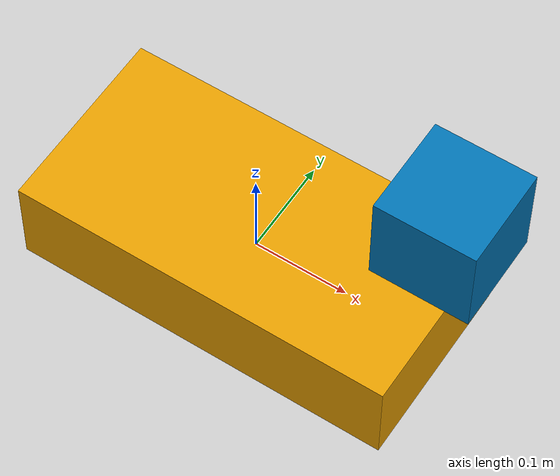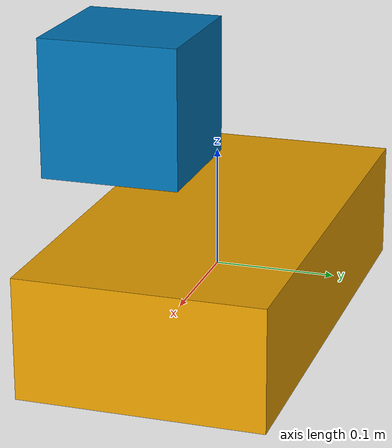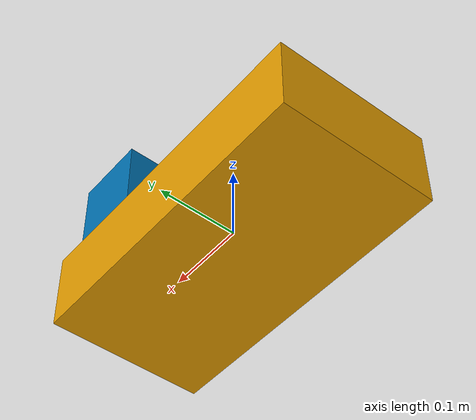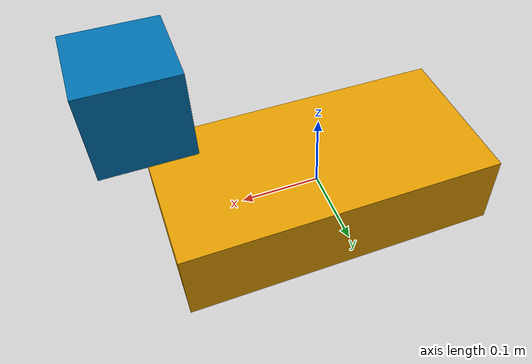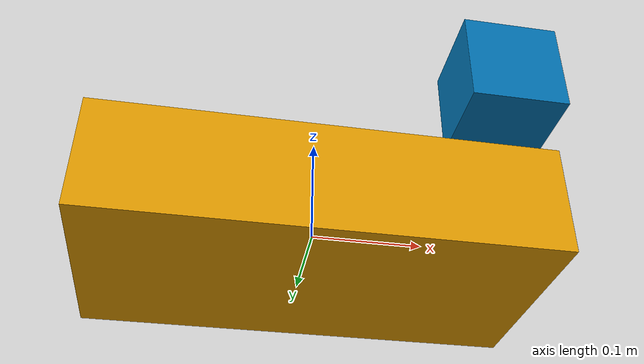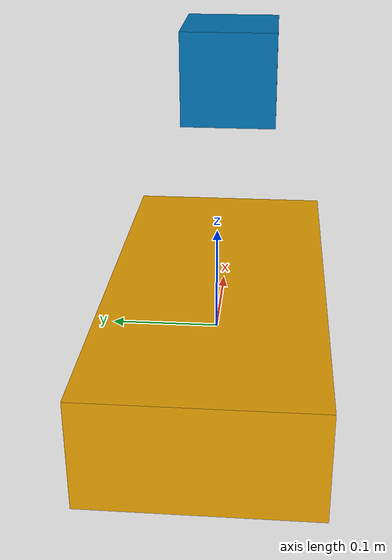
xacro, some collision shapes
<?xml version='1.0'?>
<robot xmlns:xacro="http://www.ros.org/wiki/xacro" name = "my_robot">
 <!--xacro:include filename="$(find my_robot)/src/urdf/hokuyo_utm30lx.urdf.xacro"/-->

        <link name="chassis">
            <pose xyz="0 0 0.1" rpy="0 0 0"/>
            <inertial>
             <mass value="15.0"/>
             <origin xyz="0.0 0 0.1" rpy=" 0 0 0"/>
              <inertia
               ixx="0.1" ixy="0" ixz="0"
               iyy="0.1" iyz="0"
               izz="0.1"
              />
            </inertial>

            <visual name='visual'>
              <geometry>
                <box size= "0.4 0.2 0.1"/>
              </geometry>
            </visual>

           <collision name='collision'>
              <geometry>
                <box size= "0.4 0.2 0.1"/>
              </geometry>
            </collision>
        </link>

        <link name = "caster_wheel">
            <visual name='caster_visual'>
             <pose xyz="-0.15 0 -0.05" rpy="0 0 0"/>
              <geometry>
               <sphere radius="0.05"/>
              </geometry>
            </visual>

            <collision name='caster_collision'>
             <origin xyz="-0.15 0 -0.05" rpy=" 0 0 0"/>
              <geometry>
               <sphere radius="0.05"/>
              </geometry>
              <surface>
               <friction>
                <ode>
                 <mu>0</mu>
                 <mu2>0</mu2>
                 <slip1>1.0</slip1>
                 <slip2>1.0</slip2>
                </ode>
               </friction>
              </surface>
            </collision>
        </link>

        <link name="left_wheel">
         <pose xyz="0.1 0.13 0.1" rpy="0 1.5707 1.5707"/>

         <inertial>
          <origin xyz="0 0 0" rpy="0 1.5707 1.5707"/>
          <mass value="5"/>
          <inertia
           ixx=".1" ixy="0.0" ixz="0.0"
           iyy=".1" iyz="0.0"
           izz=".1"/>
          </inertial>

          <visual name='visual'>
           <geometry>
            <cylinder radius="0.1" length="0.05"/>
           </geometry>
          </visual>

          <collision name='collision'>
           <geometry>
            <cylinder radius="0.1" length="0.05"/>
           </geometry>
          </collision>
        </link>

        <link name="right_wheel">
         <pose xyz="0.1 -0.13 0.1" rpy="0 1.5707 1.5707"/>
         <inertial>
          <origin xyz="0 0 0" rpy="0 1.5707 1.5707"/>
          <mass value="5"/>
          <inertia
           ixx=".1" ixy="0.0" ixz="0.0"
           iyy=".1" iyz="0.0"
           izz=".1"/>
          </inertial>

          <visual name='visual'>
           <geometry>
            <cylinder radius="0.1" length="0.05"/>
           </geometry>
          </visual>

          <collision name = 'collision'>
           <geometry>
            <cylinder radius="0.1" length="0.05"/>
           </geometry>
          </collision>
        </link>

        <joint name="caster_chassis" type="fixed">
          <parent link="chassis"/>
          <child link="caster_wheel"/>
          <axis xyz="0 0 1"/>
        </joint>

        <joint name="left_wheel_hinge" type="continuous">
          <child link = "left_wheel"/>
          <parent link="chassis"/>
          <axis xyz="0 1 0"/>
          <pose xyz="0 0 -0.03" rpy="0 0 0"/>
          <limit effort="10000" velocity="1000"/>
          <joint_properties damping="1.0" friction="1.0"/>
        </joint>

        <joint name="right_wheel_hinge" type="continuous" >
          <child link = "right_wheel"/>
          <parent link ="chassis"/>
          <axis xyz="0 1 0"/>
          <pose xyz="0 0 0.03" rpy="0 0 0"/>
          <joint_properties damping="1.0" friction="1.0"/>
          <limit effort="10000" velocity="1000"/>
        </joint>

        <link name="hokuyo">
         <collision name = "collision">
          <origin xyz="0 0 0" rpy="0 0 0"/>
           <geometry>
            <box size="0.1 0.1 0.1"/>
           </geometry>
         </collision>

         <visual>
          <origin xyz="0 0 0" rpy="0 0 0"/>
           <geometry>
            <mesh filename="package://my_robot/src/meshes/hokuyo_utm30lx/hokuyo_utm30_lx.dae"/>
           </geometry>
         </visual>

            <inertial>
             <mass value="1e-5" />
             <origin xyz="0 0 0" rpy="0 0 0"/>
             <inertia ixx="1e-6" ixy="0" ixz="0" iyy="1e-6" iyz="0" izz="1e-6" />
            </inertial>
        </link>

        <joint name="hokuyo_joint" type="fixed">
         <child link ="hokuyo"/>
         <parent link ="chassis"/>
         <axis xyz="0 0 1"/>
         <origin xyz="0.2 0 0.2" rpy="0 0 0" />
        </joint>
</robot>
